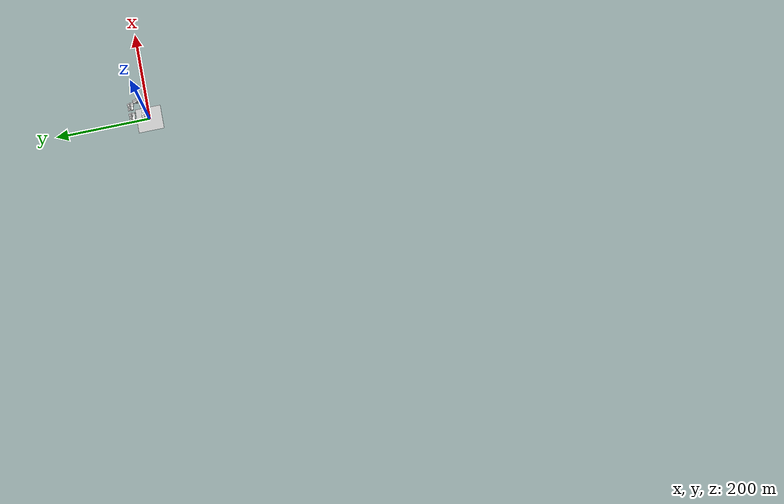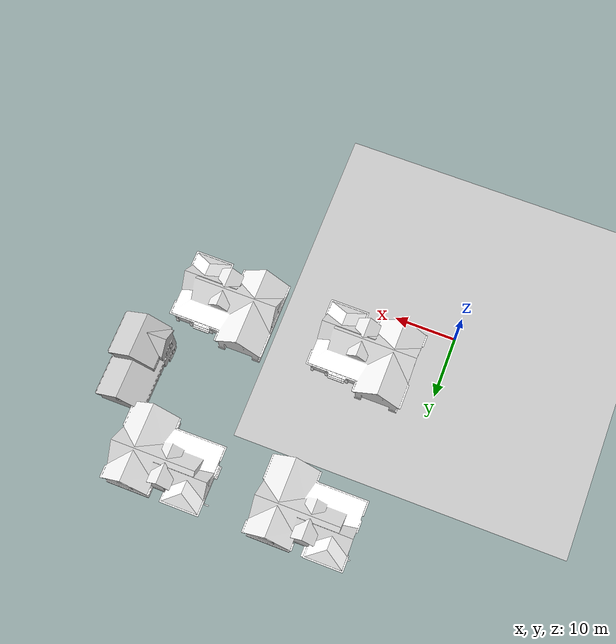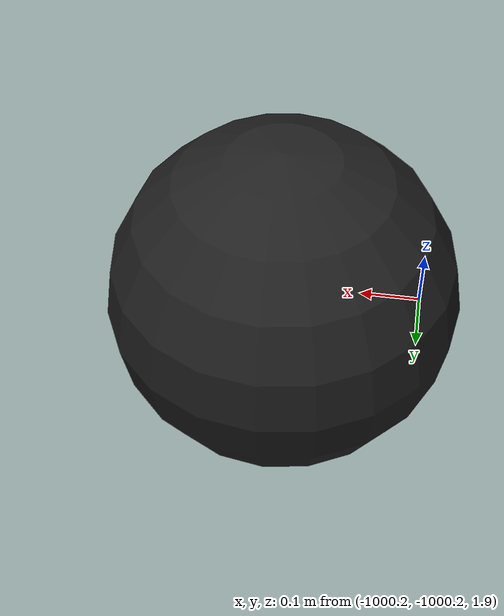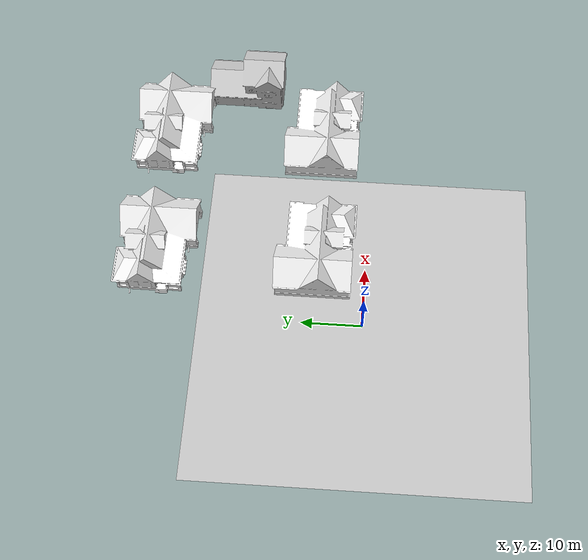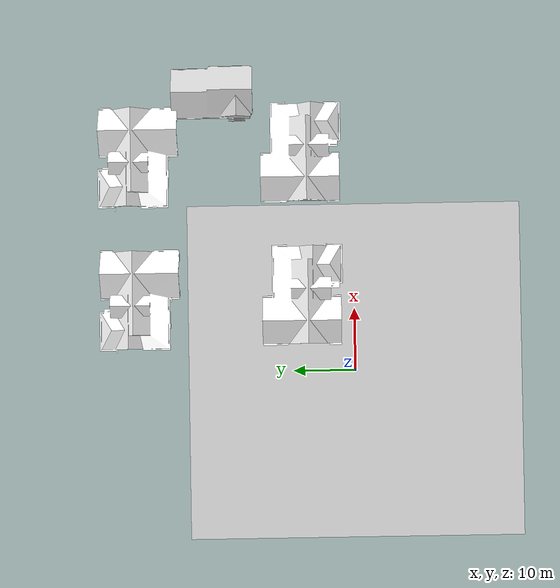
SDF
<sdf version="1.7">
 <world name="default">
  <plugin name="mrs_gazebo_static_transform_republisher_plugin" filename="libMRSGazeboStaticTransformRepublisher.so"/>
  <spherical_coordinates>
   <surface_model>EARTH_WGS84</surface_model>
   <latitude_deg>47.3977</latitude_deg>
   <longitude_deg>8.54559</longitude_deg>
   <elevation>0</elevation>
   <heading_deg>0</heading_deg>
  </spherical_coordinates>
  <physics name="default_physics" default="0" type="ode">
   <ode>
    <solver>
     <type>quick</type>
     <iters>10</iters>
     <sor>1.3</sor>
     <use_dynamic_moi_rescaling>0</use_dynamic_moi_rescaling>
    </solver>
    <constraints>
     <cfm>0</cfm>
     <erp>0.2</erp>
     <contact_max_correcting_vel>1000</contact_max_correcting_vel>
     <contact_surface_layer>0.001</contact_surface_layer>
    </constraints>
   </ode>
   <max_step_size>0.004</max_step_size>
   <real_time_factor>1</real_time_factor>
   <real_time_update_rate>250</real_time_update_rate>
  </physics>
  <scene><shadows>0</shadows><ambient>0.4 0.4 0.4 1</ambient><background>0.7 0.7 0.7 1</background></scene>
  <light name="sun" type="directional">
   <pose>0 0 1000 0.4 0.2 0</pose>
   <diffuse>1 1 1 1</diffuse>
   <specular>0.6 0.6 0.6 1</specular>
   <direction>0.1 0.1 -0.9</direction>
   <attenuation>
    <range>20</range>
    <constant>0.5</constant>
    <linear>0.01</linear>
    <quadratic>0.001</quadratic>
   </attenuation>
   <spot><inner_angle>0</inner_angle><outer_angle>0</outer_angle><falloff>0</falloff></spot>
  </light>
  <model name="ground_plane">
   <static>1</static>
   <link name="link">
    <collision name="collision">
     <geometry><plane><normal>0 0 1</normal><size>250 250</size></plane></geometry>
     <surface><friction><ode><mu>1</mu><mu2>1</mu2></ode></friction></surface>
    </collision>
    <visual name="grass">
     <cast_shadows>0</cast_shadows>
     <geometry><mesh><uri>file://grass_plane/meshes/grass_plane.dae</uri></mesh></geometry>
    </visual>
   </link>
  </model>
  <model name="the_void">
   <static>1</static>
   <link name="link">
    <pose>0 0 0.1 0 -0 0</pose>
    <visual name="the_void">
     <pose>0 0 2 0 -0 0</pose>
     <geometry><sphere><radius>0.25</radius></sphere></geometry>
     <material>
      <script><uri>file://media/materials/scripts/Gazebo.material</uri><name>Gazebo/Black</name></script>
     </material>
    </visual>
   </link>
   <pose>-1000 -1000 0 0 -0 0</pose>
  </model>
  <plugin name="mrs_gazebo_rviz_cam_synchronizer" filename="libMRSGazeboRvizCameraSynchronizer.so">
   <target_frame_id>gazebo_user_camera</target_frame_id>
   <world_origin_frame_id>uav1/gps_origin</world_origin_frame_id>
   <frame_to_follow>uav1</frame_to_follow>
  </plugin>
  <gravity>0 0 -9.8066</gravity>
  <magnetic_field>6e-06 2.3e-05 -4.2e-05</magnetic_field>
  <atmosphere type="adiabatic"/>
  <model name="House 1">
   <static>1</static>
   <link name="link">
    <collision name="collision">
     <geometry><mesh><uri>model://house_1/meshes/house_1.dae</uri><scale>1.5 1.5 1.5</scale></mesh></geometry>
    </collision>
    <visual name="visual">
     <geometry><mesh><uri>model://house_1/meshes/house_1.dae</uri><scale>1.5 1.5 1.5</scale></mesh></geometry>
     <material>
      <script>
       <uri>model://house_1/materials/scripts</uri>
       <uri>model://house_1/materials/textures</uri>
       <name>House_1/Diffuse</name>
      </script>
      <shader type="normal_map_tangent_space"><normal_map>House_1_Normal.png</normal_map></shader>
     </material>
    </visual>
   </link>
   <pose>12 35 0 0 -0 0</pose>
  </model>
  <model name="House 1_clone">
   <static>1</static>
   <link name="link">
    <collision name="collision">
     <geometry><mesh><uri>model://house_1/meshes/house_1.dae</uri><scale>1.5 1.5 1.5</scale></mesh></geometry>
    </collision>
    <visual name="visual">
     <geometry><mesh><uri>model://house_1/meshes/house_1.dae</uri><scale>1.5 1.5 1.5</scale></mesh></geometry>
     <material>
      <script>
       <uri>model://house_1/materials/scripts</uri>
       <uri>model://house_1/materials/textures</uri>
       <name>House_1/Diffuse</name>
      </script>
      <shader type="normal_map_tangent_space"><normal_map>House_1_Normal.png</normal_map></shader>
     </material>
    </visual>
   </link>
   <pose>35 35 0 0 -0 0</pose>
  </model>
  <model name="House 3">
   <static>1</static>
   <link name="link">
    <collision name="collision">
     <geometry><mesh><uri>model://house_3/meshes/house_3.dae</uri><scale>1.5 1.5 1.5</scale></mesh></geometry>
    </collision>
    <visual name="visual">
     <geometry><mesh><uri>model://house_3/meshes/house_3.dae</uri><scale>1.5 1.5 1.5</scale></mesh></geometry>
     <material>
      <script>
       <uri>model://house_3/materials/scripts</uri>
       <uri>model://house_3/materials/textures</uri>
       <uri>model://house_1/materials/textures</uri>
       <name>House_3/Diffuse</name>
      </script>
      <shader type="normal_map_tangent_space">
       <normal_map>model://house_1/materials/textures/House_1_Normal.png</normal_map>
      </shader>
     </material>
    </visual>
   </link>
   <pose>45 23 0 0 -0 1.57</pose>
  </model>
  <model name="House 1_clone_clone">
   <static>1</static>
   <link name="link">
    <collision name="collision">
     <geometry><mesh><uri>model://house_1/meshes/house_1.dae</uri><scale>1.5 1.5 1.5</scale></mesh></geometry>
    </collision>
    <visual name="visual">
     <geometry><mesh><uri>model://house_1/meshes/house_1.dae</uri><scale>1.5 1.5 1.5</scale></mesh></geometry>
     <material>
      <script>
       <uri>model://house_1/materials/scripts</uri>
       <uri>model://house_1/materials/textures</uri>
       <name>House_1/Diffuse</name>
      </script>
      <shader type="normal_map_tangent_space"><normal_map>House_1_Normal.png</normal_map></shader>
     </material>
    </visual>
   </link>
   <pose>35 8 0 0 -0 3.14</pose>
  </model>
  <model name="House 1_clone_0">
   <static>1</static>
   <link name="link">
    <collision name="collision">
     <geometry><mesh><uri>model://house_1/meshes/house_1.dae</uri><scale>1.5 1.5 1.5</scale></mesh></geometry>
    </collision>
    <visual name="visual">
     <geometry><mesh><uri>model://house_1/meshes/house_1.dae</uri><scale>1.5 1.5 1.5</scale></mesh></geometry>
     <material>
      <script>
       <uri>model://house_1/materials/scripts</uri>
       <uri>model://house_1/materials/textures</uri>
       <name>House_1/Diffuse</name>
      </script>
      <shader type="normal_map_tangent_space"><normal_map>House_1_Normal.png</normal_map></shader>
     </material>
    </visual>
   </link>
   <pose>12 8 0 0 -0 3.14</pose>
  </model>
 </world>
</sdf>
